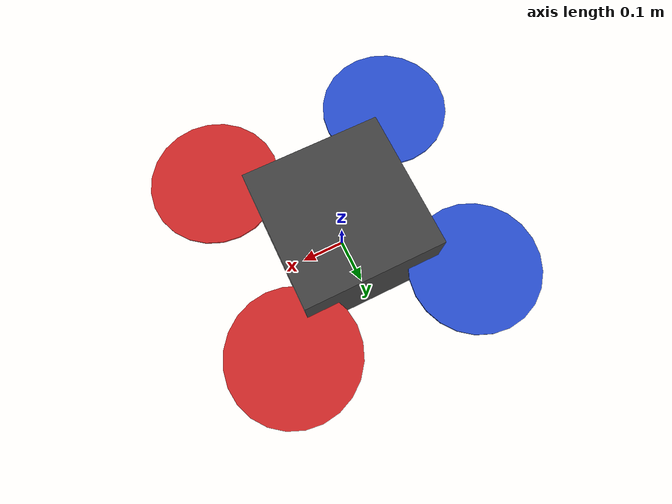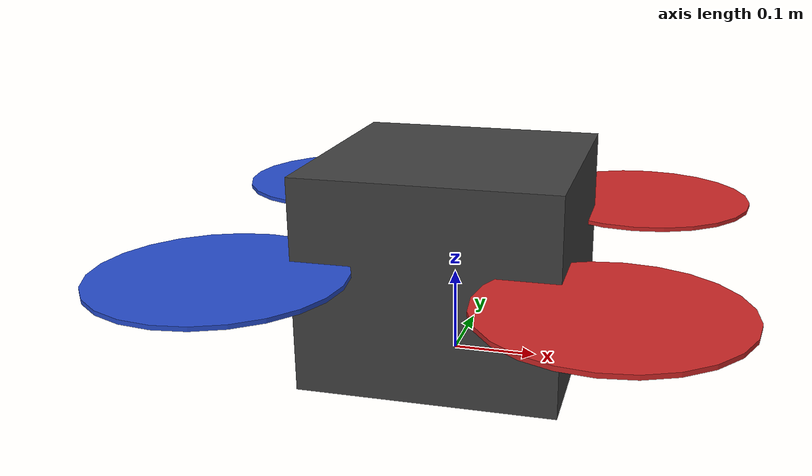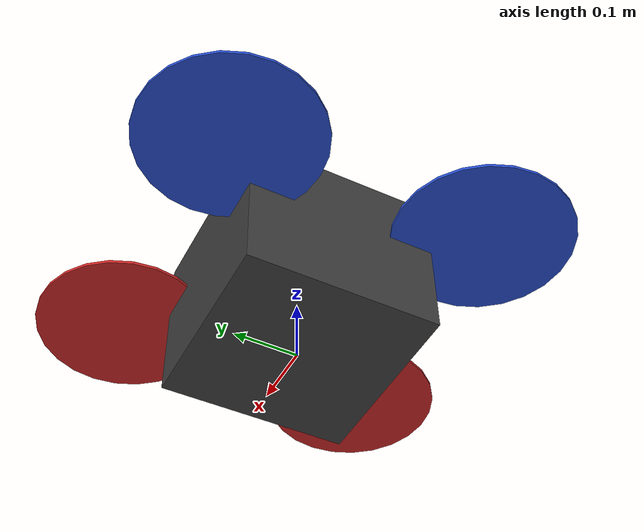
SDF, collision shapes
<?xml version="1.0"?>
<sdf version="1.6">
    <model name="marble_qav500_vio_testing">
        <pose>0 0 0.121078 0 0 0</pose>
        <link name="base_link">
            <pose frame="">0 0 0 0 -0 0</pose>
            <inertial>
                <pose frame="">0 0 0 0 -0 0</pose>
                <mass>3</mass>
                <inertia>
                    <ixx>0.03567</ixx>
                    <ixy>0</ixy>
                    <ixz>0.0006</ixz>
                    <iyy>0.05534</iyy>
                    <iyz>0</iyz>
                    <izz>0.0847</izz>
                </inertia>
            </inertial>
            <collision name="base_link_inertia_collision">
                <pose frame="">0 0 0 0 -0 0</pose>
                <geometry>
                    <box>
                        <size>0.3 0.3 0.25</size>
                    </box>
                </geometry>
            </collision>
            <visual name="base_link_inertia_visual">
                <pose frame="">0 0 -0.12 0 0 0</pose>
                <material>
                    <diffuse>0.25 0.25 0.25 1</diffuse>
                    <ambient>0.25 0.25 0.25 1</ambient>
                    <specular>0.25 0.25 0.25 1</specular>
                    <emissive>0.25 0.25 0.25 1</emissive>

                </material>
                <geometry>

                    <mesh>
                        <scale>1 1 1</scale>
                        <uri>meshes/qav500.stl</uri>
                    </mesh>
                </geometry>
            </visual>

            <visual name="right_flashlight_visual">
                <pose frame="">0.15 0 -0.034102 0 0 -1.5708</pose>
                <geometry>
                    <mesh>
                        <scale>0.01 0.01 0.01</scale>
                        <uri>meshes/spotlight.dae</uri>
                    </mesh>
                </geometry>
            </visual>
            <light name="right_light_source" type="spot">
                <pose frame="">0.25 0 -0.04 3.1416 -1.5107899999999999 3.1416</pose>
                <attenuation>
                    <range>15</range>
                    <linear>0</linear>
                    <constant>0.1</constant>
                    <quadratic>0.01</quadratic>
                </attenuation>
                <diffuse>0.8 0.8 0.5 1</diffuse>
                <specular>0.8 0.8 0.5 1</specular>
                <spot>
                  <!-- The real vehicle doesn't have a light currently, but for simulation
                    purposes, we added one like the ones on the husky and hd2 -->
                    <inner_angle>2.8</inner_angle>
                    <outer_angle>2.9</outer_angle>
                    <falloff>1</falloff>
                </spot>
                <direction>0 0 -1</direction>
                <cast_shadows>1</cast_shadows>
            </light>

	      <sensor name="imu_sensor" type="imu">
		<always_on>1</always_on>
		<update_rate>250</update_rate>

		<imu>
		  <angular_velocity>
		    <x>
		      <noise type="gaussian">
		        <mean>0</mean>
            <stddev>0.0000872664</stddev>
            <bias_mean>0.0000075</bias_mean>
            <bias_stddev>0.00000080</bias_stddev>
            <dynamic_bias_stddev>0.0000004</dynamic_bias_stddev>
		        <dynamic_bias_correlation_time>1000.0</dynamic_bias_correlation_time>
		      </noise>
		    </x>
		    <y>
		      <noise type="gaussian">
		        <mean>0</mean>
            <stddev>0.0000872664</stddev>
            <bias_mean>0.0000075</bias_mean>
            <bias_stddev>0.00000080</bias_stddev>
            <dynamic_bias_stddev>0.0000004</dynamic_bias_stddev>
		        <dynamic_bias_correlation_time>1000.0</dynamic_bias_correlation_time>
		      </noise>
		    </y>
		    <z>
		      <noise type="gaussian">
		        <mean>0</mean>
            <stddev>0.0000872664</stddev>
            <bias_mean>0.0000075</bias_mean>
            <bias_stddev>0.00000080</bias_stddev>
            <dynamic_bias_stddev>0.0000004</dynamic_bias_stddev>
		        <dynamic_bias_correlation_time>1000.0</dynamic_bias_correlation_time>
		      </noise>
		    </z>
		  </angular_velocity>
		  <linear_acceleration>
		    <x>
		      <noise type="gaussian">
		        <mean>0</mean>
            <stddev>0.0001962</stddev>
            <bias_mean>0.001</bias_mean>
            <bias_stddev>0.0001</bias_stddev>
            <dynamic_bias_stddev>0.001</dynamic_bias_stddev>
		        <dynamic_bias_correlation_time>300.0</dynamic_bias_correlation_time>
		      </noise>
		    </x>
		    <y>
		      <noise type="gaussian">
		        <mean>0</mean>
            <stddev>0.0001962</stddev>
            <bias_mean>0.001</bias_mean>
            <bias_stddev>0.0001</bias_stddev>
            <dynamic_bias_stddev>0.001</dynamic_bias_stddev>
		        <dynamic_bias_correlation_time>300.0</dynamic_bias_correlation_time>
		      </noise>
		    </y>
		    <z>
		      <noise type="gaussian">
		        <mean>0</mean>
            <stddev>0.0001962</stddev>
            <bias_mean>0.001</bias_mean>
            <bias_stddev>0.0001</bias_stddev>
            <dynamic_bias_stddev>0.001</dynamic_bias_stddev>
		        <dynamic_bias_correlation_time>300.0</dynamic_bias_correlation_time>
		      </noise>
		    </z>
		  </linear_acceleration>
		</imu>
	      </sensor>
            <sensor name="air_pressure" type="air_pressure">
                <always_on>1</always_on>
                <update_rate>20</update_rate>
                <air_pressure>
                    <reference_altitude>0</reference_altitude>
                    <noise type="gaussian">
                        <mean>0.00000008</mean>
                    </noise>
                </air_pressure>
            </sensor>
            <sensor name="magnetometer" type="magnetometer">
                <always_on>1</always_on>
                <update_rate>20</update_rate>
                <magnetometer>
                    <x>
                        <noise type="gaussian">
                            <mean>0.000000080</mean>
                            <bias_mean>0.000000400</bias_mean>
                        </noise>
                    </x>
                    <y>
                        <noise type="gaussian">
                            <mean>0.000000080</mean>
                            <bias_mean>0.000000400</bias_mean>
                        </noise>
                    </y>
                    <z>
                        <noise type="gaussian">
                            <mean>0.000000080</mean>
                            <bias_mean>0.000000400</bias_mean>
                        </noise>
                    </z>
                </magnetometer>
            </sensor>

            <visual name="camera_visual">
                <pose>0.27 0 0.03 0 0 0</pose>
                <geometry>
                    <box>
                        <size>0.025 0.09 0.025</size>
                    </box>
                </geometry>
            </visual>
            <sensor name="camera_front" type="rgbd_camera">
                <camera name="camera_front">
                    <horizontal_fov>1.5184</horizontal_fov>
                    <lens>
                        <intrinsics>
                            <!-- fx = fy = width / ( 2 * tan (hfov / 2 ) ) -->
                            <fx>337.22195</fx>
                            <fy>337.22195</fy>
                            <!-- cx = ( width + 1 ) / 2 -->
                            <cx>320.5</cx>
                            <!-- cy = ( height + 1 ) / 2 -->
                            <cy>240.5</cy>
                            <s>0</s>
                        </intrinsics>
                    </lens>
                    <distortion>
                        <k1>0.0</k1>
                        <k2>0.0</k2>
                        <k3>0.0</k3>
                        <p1>0.0</p1>
                        <p2>0.0</p2>
                        <center>0.5 0.5</center>
                    </distortion>
                    <image>
                        <width>640</width>
                        <height>480</height>
                        <format>R8G8B8</format>
                    </image>
                    <clip>
                        <near>0.01</near>
                        <far>300</far>
                    </clip>
                    <depth_camera>
                    <clip>
                        <near>0.1</near>
                        <far>10</far>
                    </clip>
                    </depth_camera>
                    <noise>
                        <type>gaussian</type>
                        <mean>0</mean>
                        <stddev>0.007</stddev>
                    </noise>
                </camera>
                <always_on>1</always_on>
                <update_rate>30</update_rate>
                <visualize>0</visualize>
                <pose frame="">0.27 0 0.03 0 -0 0</pose>
            </sensor>
            <!-- Based on Intel realsense D435 (intrinsics and distortion not modeled)-->
            <sensor name="camera_front_left" type="camera">
                <pose frame="">0.27 0.06 0.035 0 0 0</pose>
                <always_on>1</always_on>
                <update_rate>20</update_rate>
                <camera name="camera_front_left">
                    <pose frame="">0 0 0 0 0 0</pose>
                    <horizontal_fov>1.5184</horizontal_fov>
                    <lens>
                        <intrinsics>
                            <!-- fx = fy = width / ( 2 * tan (hfov / 2 ) ) -->
                            <fx>337.22195</fx>
                            <fy>337.22195</fy>
                            <!-- cx = ( width + 1 ) / 2 -->
                            <cx>320.5</cx>
                            <!-- cy = ( height + 1 ) / 2 -->
                            <cy>240.5</cy>
                            <s>0</s>
                        </intrinsics>
                    </lens>
                    <distortion>
                        <k1>0.0</k1>
                        <k2>0.0</k2>
                        <k3>0.0</k3>
                        <p1>0.0</p1>
                        <p2>0.0</p2>
                        <center>0.5 0.5</center>
                    </distortion>
                    <image>
                        <width>640</width>
                        <height>480</height>
                        <format>R8G8B8</format>
                    </image>
                    <clip>
                        <near>0.01</near>
                        <far>300</far>
                    </clip>
                    <noise>
                        <type>gaussian</type>
                        <mean>0</mean>
                        <stddev>0.007</stddev>
                    </noise>
                </camera>
            </sensor>
            <sensor name="camera_front_right" type="camera">
                <pose frame="">0.27 -0.06 0.035 0 0 0</pose>
                <always_on>1</always_on>
                <update_rate>20</update_rate>
                <camera name="camera_front_right">
                    <pose frame="">0 0 0 0 0 0</pose>
                    <horizontal_fov>1.5184</horizontal_fov>
                    <lens>
                        <intrinsics>
                            <!-- fx = fy = width / ( 2 * tan (hfov / 2 ) ) -->
                            <fx>337.22195</fx>
                            <fy>337.22195</fy>
                            <!-- cx = ( width + 1 ) / 2 -->
                            <cx>320.5</cx>
                            <!-- cy = ( height + 1 ) / 2 -->
                            <cy>240.5</cy>
                            <s>0</s>
                        </intrinsics>
                    </lens>
                    <distortion>
                        <k1>0.0</k1>
                        <k2>0.0</k2>
                        <k3>0.0</k3>
                        <p1>0.0</p1>
                        <p2>0.0</p2>
                        <center>0.5 0.5</center>
                    </distortion>
                    <image>
                        <width>640</width>
                        <height>480</height>
                        <format>R8G8B8</format>
                    </image>
                    <clip>
                        <near>0.01</near>
                        <far>300</far>
                    </clip>
                    <noise>
                        <type>gaussian</type>
                        <mean>0</mean>
                        <stddev>0.007</stddev>
                    </noise>
                </camera>
            </sensor>
            <visual name="laser_visual">
                <pose>0 0 -0.05 0 0 0</pose>
                <geometry>
                    <cylinder>
                        <radius>0.03</radius>
                        <length>0.1</length>
                    </cylinder>
                </geometry>
            </visual>
            <sensor name="front_laser" type="gpu_ray">
				<!-- Lidar is based on ouster OS1-64 -->
                <pose>0 0 -0.05 0 0 0</pose>
                <update_rate>15</update_rate>
                <lidar>
                    <scan>
                        <horizontal>
                            <!-- Resolution can't be above 16k, see
                            https://bitbucket.org/ignitionrobotics/ign-sensors/issues/8 -->
                            <samples>1024</samples>
                            <resolution>0.006</resolution>
                            <min_angle>-3.1459</min_angle>
                            <max_angle>3.1459</max_angle>
                        </horizontal>
                        <vertical>
                            <samples>64</samples>
                            <resolution>1</resolution>
                            <min_angle>-0.3927</min_angle>
                            <max_angle>0.3927</max_angle>
                        </vertical>
                    </scan>
                    <range>
                        <min>0.05</min>
                        <max>120</max>
                        <resolution>0.003</resolution>
                    </range>
                    <noise>
                        <type>gaussian</type>
                        <mean>0</mean>
                        <stddev>0.03</stddev>
                    </noise>
                </lidar>
            </sensor>
            <!-- Modeled from the Pico flexx tof cameras-->
            <sensor name="tof_top" type="depth_camera">
                <pose>0.24 0 0.055 0 -1.57 0</pose>
                <camera name="tof_top">

                    <horizondal_fov>1.0821</horizondal_fov>
                    <image>
                        <width>224</width>
                        <height>171</height>
                        <format>R8G8B8</format>
                    </image>
                    <clip>
                        <near>0.1</near>
                        <far>4.0</far>
                    </clip>
                    <depth_camera>
                        <output>depths</output>
                        <clip>
                            <near>0.1</near>
                            <far>4.0</far>
                        </clip>
                    </depth_camera>
                </camera>
                <always_on>1</always_on>
                <update_rate>30</update_rate>
                <visualize>0</visualize>
            </sensor>

            <visual name="tof_top_visual">
                <pose>0.24 0 0.055 0 0 0</pose>
                <geometry>
                    <box>
                        <size>0.017 0.068 0.00735</size>
                    </box>
                </geometry>
            </visual>

            <sensor name="tof_bottom" type="depth_camera">
                <pose>0.24 0 0.00 0 1.57 0</pose>
                <camera name="tof_top">

                    <horizondal_fov>1.0821</horizondal_fov>
                    <image>
                        <width>224</width>
                        <height>171</height>
                        <format>R8G8B8</format>
                    </image>
                    <clip>
                        <near>0.1</near>
                        <far>4.0</far>
                    </clip>
                    <depth_camera>
                        <output>depths</output>
                        <clip>
                            <near>0.1</near>
                            <far>4.0</far>
                        </clip>
                    </depth_camera>
                </camera>
                <always_on>1</always_on>
                <update_rate>30</update_rate>
                <visualize>0</visualize>
            </sensor>

            <visual name="tof_bottom_visual">
                <pose>0.24 0 0.006 0 0 0</pose>
                <geometry>
                    <box>
                        <size>0.017 0.068 0.00735</size>
                    </box>
                </geometry>
            </visual>

        </link>
        <link name="rotor_0">
            <pose frame="">0.206069 0.206092 0.028 0 0 0.523599</pose>
            <inertial>
                <pose frame="">0 0 0 0 -0 0</pose>
                <mass>0.005</mass>
                <inertia>
                    <ixx>9.75e-07</ixx>
                    <ixy>0</ixy>
                    <ixz>0</ixz>
                    <iyy>8.13545e-05</iyy>
                    <iyz>0</iyz>
                    <izz>8.22545e-05</izz>
                </inertia>
            </inertial>
            <collision name="rotor_0_collision">
                <pose frame="">0 0 0 0 -0 0</pose>
                <geometry>
                    <cylinder>
                        <length>0.005</length>
                        <radius>0.1397</radius>
                    </cylinder>
                </geometry>
                <surface>
                    <contact>
                        <ode/>
                    </contact>
                    <friction>
                        <ode/>
                    </friction>
                </surface>
            </collision>
            <visual name="rotor_0_visual">
                <pose frame="">0 0 0 0 -0 0</pose>
                <geometry>
                    <mesh>
                        <scale>1 1 1</scale>
                        <uri>meshes/neo11_propeller_ccw.dae</uri>
                    </mesh>
                </geometry>
                <material>
                    <diffuse>1 0 0 1</diffuse>
                    <script>
                        <name>Gazebo/Red</name>
                        <uri>materials/scripts/gazebo.material</uri>
                    </script>
                </material>
                <cast_shadows>0</cast_shadows>
            </visual>
            <gravity>1</gravity>
            <velocity_decay/>
        </link>
        <joint name="rotor_0_joint" type="revolute">
            <child>rotor_0</child>
            <parent>base_link</parent>
            <axis>
                <xyz>0 0 1</xyz>
                <limit>
                    <lower>-1e+16</lower>
                    <upper>1e+16</upper>
                </limit>
                <dynamics>
                    <spring_reference>0</spring_reference>
                    <spring_stiffness>0</spring_stiffness>
                </dynamics>
                <use_parent_model_frame>1</use_parent_model_frame>
            </axis>
        </joint>
        <link name="rotor_1">
            <pose frame="">-0.206432 0.205944 0.028 0 0 0</pose>
            <inertial>
                <pose frame="">0 0 0 0 -0 0</pose>
                <mass>0.005</mass>
                <inertia>
                    <ixx>9.75e-07</ixx>
                    <ixy>0</ixy>
                    <ixz>0</ixz>
                    <iyy>8.13545e-05</iyy>
                    <iyz>0</iyz>
                    <izz>8.22545e-05</izz>
                </inertia>
            </inertial>
            <collision name="rotor_1_collision">
                <pose frame="">0 0 0 0 -0 0</pose>
                <geometry>
                    <cylinder>
                        <length>0.005</length>
                        <radius>0.1397</radius>
                    </cylinder>
                </geometry>
                <surface>
                    <contact>
                        <ode/>
                    </contact>
                    <friction>
                        <ode/>
                    </friction>
                </surface>
            </collision>
            <visual name="rotor_1_visual">
                <pose frame="">0 0 0 0 -0 0</pose>
                <geometry>
                    <mesh>
                        <scale>1 1 1</scale>
                        <uri>meshes/neo11_propeller_cw.dae</uri>
                    </mesh>
                </geometry>
                <material>
                    <diffuse>0 0 1 1</diffuse>
                    <script>
                        <name>Gazebo/Blue</name>
                        <uri>materials/scripts/gazebo.material</uri>
                    </script>
                </material>
                <cast_shadows>0</cast_shadows>
            </visual>
            <gravity>1</gravity>
            <velocity_decay/>
        </link>
        <joint name="rotor_1_joint" type="revolute">
            <child>rotor_1</child>
            <parent>base_link</parent>
            <axis>
                <xyz>0 0 1</xyz>
                <limit>
                    <lower>-1e+16</lower>
                    <upper>1e+16</upper>
                </limit>
                <dynamics>
                    <spring_reference>0</spring_reference>
                    <spring_stiffness>0</spring_stiffness>
                </dynamics>
                <use_parent_model_frame>1</use_parent_model_frame>
            </axis>
        </joint>
        <link name="rotor_2">
            <pose frame="">-0.206432 -0.205944 0.028 0 -0 -2.61799</pose>
            <inertial>
                <pose frame="">0 0 0 0 -0 0</pose>
                <mass>0.005</mass>
                <inertia>
                    <ixx>9.75e-07</ixx>
                    <ixy>0</ixy>
                    <ixz>0</ixz>
                    <iyy>8.13545e-05</iyy>
                    <iyz>0</iyz>
                    <izz>8.22545e-05</izz>
                </inertia>
            </inertial>
            <collision name="rotor_2_collision">
                <pose frame="">0 0 0 0 -0 0</pose>
                <geometry>
                    <cylinder>
                        <length>0.005</length>
                        <radius>0.1397</radius>
                    </cylinder>
                </geometry>
                <surface>
                    <contact>
                        <ode/>
                    </contact>
                    <friction>
                        <ode/>
                    </friction>
                </surface>
            </collision>
            <visual name="rotor_2_visual">
                <pose frame="">0 0 0 0 -0 0</pose>
                <geometry>
                    <mesh>
                        <scale>1 1 1</scale>
                        <uri>meshes/neo11_propeller_ccw.dae</uri>
                    </mesh>
                </geometry>
                <material>
                    <diffuse>0 0 1 1</diffuse>
                    <script>
                        <name>Gazebo/Blue</name>
                        <uri>materials/scripts/gazebo.material</uri>
                    </script>
                </material>
                <cast_shadows>0</cast_shadows>
            </visual>
            <gravity>1</gravity>
            <velocity_decay/>
        </link>
        <joint name="rotor_2_joint" type="revolute">
            <child>rotor_2</child>
            <parent>base_link</parent>
            <axis>
                <xyz>0 0 1</xyz>
                <limit>
                    <lower>-1e+16</lower>
                    <upper>1e+16</upper>
                </limit>
                <dynamics>
                    <spring_reference>0</spring_reference>
                    <spring_stiffness>0</spring_stiffness>
                </dynamics>
                <use_parent_model_frame>1</use_parent_model_frame>
            </axis>
        </joint>
        <link name="rotor_3">
            <pose frame="">0.206432 -0.205944 0.028 0 0 -0.523599</pose>
            <inertial>
                <pose frame="">0 0 0 0 -0 0</pose>
                <mass>0.005</mass>
                <inertia>
                    <ixx>9.75e-07</ixx>
                    <ixy>0</ixy>
                    <ixz>0</ixz>
                    <iyy>8.13545e-05</iyy>
                    <iyz>0</iyz>
                    <izz>8.22545e-05</izz>
                </inertia>
            </inertial>
            <collision name="rotor_3_collision">
                <pose frame="">0 0 0 0 -0 0</pose>
                <geometry>
                    <cylinder>
                        <length>0.005</length>
                        <radius>0.1397</radius>
                    </cylinder>
                </geometry>
                <surface>
                    <contact>
                        <ode/>
                    </contact>
                    <friction>
                        <ode/>
                    </friction>
                </surface>
            </collision>
            <visual name="rotor_3_visual">
                <pose frame="">0 0 0 0 -0 0</pose>
                <geometry>
                    <mesh>
                        <scale>1 1 1</scale>
                        <uri>meshes/neo11_propeller_cw.dae</uri>
                    </mesh>
                </geometry>
                <material>
                    <diffuse>1 0 0 1</diffuse>
                    <script>
                        <name>Gazebo/Red</name>
                        <uri>media/materials/scripts/gazebo.material</uri>
                    </script>
                </material>
                <cast_shadows>0</cast_shadows>
            </visual>
            <gravity>1</gravity>
            <velocity_decay/>
        </link>
        <joint name="rotor_3_joint" type="revolute">
            <child>rotor_3</child>
            <parent>base_link</parent>
            <axis>
                <xyz>0.043578 0.075479 0.996195</xyz>
                <limit>
                    <lower>-1e+16</lower>
                    <upper>1e+16</upper>
                </limit>
                <dynamics>
                    <spring_reference>0</spring_reference>
                    <spring_stiffness>0</spring_stiffness>
                </dynamics>
                <use_parent_model_frame>1</use_parent_model_frame>
            </axis>
        </joint>
    </model>
</sdf>
